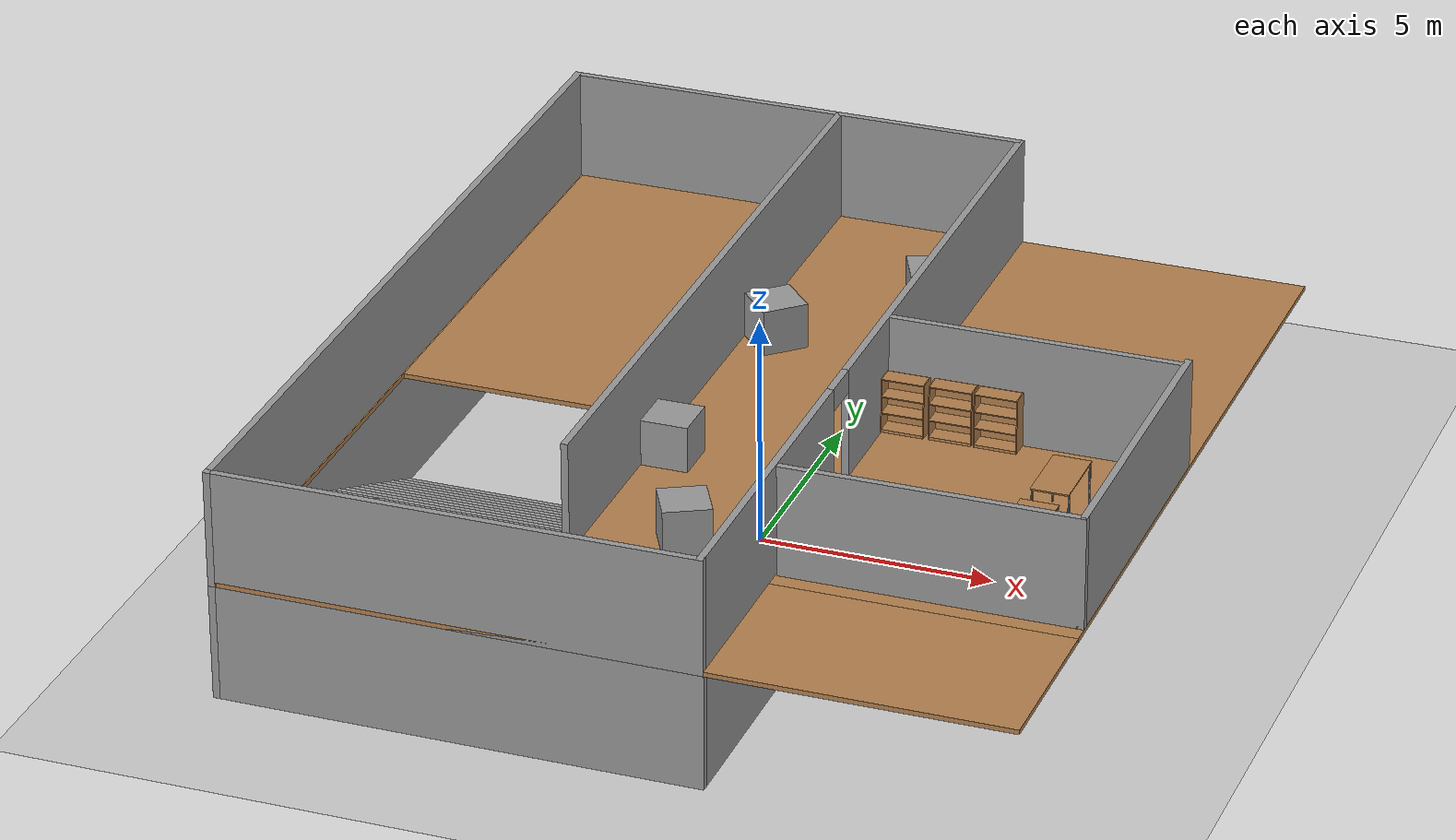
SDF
<sdf version="1.6">
 <world name="default">
  <light name="sun" type="directional">
   <pose>0 0 10 0 -0 0</pose>
   <diffuse>0.8 0.8 0.8 1</diffuse>
   <specular>0.2 0.2 0.2 1</specular>
   <attenuation>
    <range>1000</range>
    <constant>0.9</constant>
    <linear>0.01</linear>
    <quadratic>0.001</quadratic>
   </attenuation>
   <direction>-0.5 0.1 -0.9</direction>
  </light>
  <model name="ground_plane">
   <static>1</static>
   <link name="link">
    <collision name="collision">
     <geometry><plane><normal>0 0 1</normal><size>100 100</size></plane></geometry>
     <surface><friction><ode><mu>100</mu><mu2>50</mu2></ode></friction></surface>
    </collision>
    <visual name="visual">
     <cast_shadows>0</cast_shadows>
     <geometry><plane><normal>0 0 1</normal><size>100 100</size></plane></geometry>
     <material>
      <script><uri>file://media/materials/scripts/gazebo.material</uri><name>Gazebo/Grey</name></script>
     </material>
    </visual>
   </link>
  </model>
  <gravity>0 0 -9.8</gravity>
  <magnetic_field>6e-06 2.3e-05 -4.2e-05</magnetic_field>
  <atmosphere type="adiabatic"/>
  <physics name="default_physics" default="0" type="ode">
   <max_step_size>0.001</max_step_size>
   <real_time_factor>1</real_time_factor>
   <real_time_update_rate>1000</real_time_update_rate>
  </physics>
  <scene><ambient>0.4 0.4 0.4 1</ambient><background>0.7 0.7 0.7 1</background><shadows>1</shadows></scene>
  <spherical_coordinates>
   <surface_model>EARTH_WGS84</surface_model>
   <latitude_deg>0</latitude_deg>
   <longitude_deg>0</longitude_deg>
   <elevation>0</elevation>
   <heading_deg>0</heading_deg>
  </spherical_coordinates>
  <model name="chemplant1_0">
   <pose>0.37495 0.174081 0 0 -0 0</pose>
   <link name="Floor_1">
    <pose>0 0 2.5 0 -0 0</pose>
    <visual name="Floor_1_Visual_0">
     <pose>-8.17338 0 0.05 0 -0 0</pose>
     <geometry><box><size>0.175122 19.5 0.1</size></box></geometry>
     <material>
      <script><uri>file://media/materials/scripts/gazebo.material</uri><name>Gazebo/Wood</name></script>
      <ambient>1 1 1 1</ambient>
     </material>
     <meta><layer>1</layer></meta>
    </visual>
    <collision name="Floor_1_Collision_0">
     <geometry><box><size>0.175122 19.5 0.1</size></box></geometry>
     <pose>-8.17338 0 0.05 0 -0 0</pose>
    </collision>
    <visual name="Floor_1_Visual_1">
     <pose>0.087561 -7.93989 0.05 0 -0 0</pose>
     <geometry><box><size>16.3468 3.62022 0.1</size></box></geometry>
     <material>
      <script><uri>file://media/materials/scripts/gazebo.material</uri><name>Gazebo/Wood</name></script>
      <ambient>1 1 1 1</ambient>
     </material>
     <meta><layer>1</layer></meta>
    </visual>
    <collision name="Floor_1_Collision_1">
     <geometry><box><size>16.3468 3.62022 0.1</size></box></geometry>
     <pose>0.087561 -7.93989 0.05 0 -0 0</pose>
    </collision>
    <visual name="Floor_1_Visual_2">
     <pose>3.02127 1.81011 0.05 0 -0 0</pose>
     <geometry><box><size>10.4794 15.8798 0.1</size></box></geometry>
     <material>
      <script><uri>file://media/materials/scripts/gazebo.material</uri><name>Gazebo/Wood</name></script>
      <ambient>1 1 1 1</ambient>
     </material>
     <meta><layer>1</layer></meta>
    </visual>
    <collision name="Floor_1_Collision_2">
     <geometry><box><size>10.4794 15.8798 0.1</size></box></geometry>
     <pose>3.02127 1.81011 0.05 0 -0 0</pose>
    </collision>
    <visual name="Floor_1_Visual_3">
     <pose>-5.15212 4.66289 0.05 0 -0 0</pose>
     <geometry><box><size>5.86741 10.1742 0.1</size></box></geometry>
     <material>
      <script><uri>file://media/materials/scripts/gazebo.material</uri><name>Gazebo/Wood</name></script>
      <ambient>1 1 1 1</ambient>
     </material>
     <meta><layer>1</layer></meta>
    </visual>
    <collision name="Floor_1_Collision_3">
     <geometry><box><size>5.86741 10.1742 0.1</size></box></geometry>
     <pose>-5.15212 4.66289 0.05 0 -0 0</pose>
    </collision>
   </link>
   <link name="Stairs_3">
    <visual name="Stairs_3_Visual_0">
     <pose>-5.15212 -0.614412 0.083333 0 -0 0</pose>
     <geometry><box><size>5.86741 0.38037 0.166667</size></box></geometry>
     <material>
      <script><uri>file://media/materials/scripts/gazebo.material</uri><name>Gazebo/Grey</name></script>
      <ambient>1 1 1 1</ambient>
     </material>
     <meta><layer>0</layer></meta>
    </visual>
    <collision name="Stairs_3_Collision_0">
     <geometry><box><size>5.86741 0.38037 0.166667</size></box></geometry>
     <pose>-5.15212 -0.614412 0.083333 0 -0 0</pose>
    </collision>
    <visual name="Stairs_3_Visual_1">
     <pose>-5.15212 -0.994782 0.25 0 -0 0</pose>
     <geometry><box><size>5.86741 0.38037 0.166667</size></box></geometry>
     <material>
      <script><uri>file://media/materials/scripts/gazebo.material</uri><name>Gazebo/Grey</name></script>
      <ambient>1 1 1 1</ambient>
     </material>
     <meta><layer>0</layer></meta>
    </visual>
    <collision name="Stairs_3_Collision_1">
     <geometry><box><size>5.86741 0.38037 0.166667</size></box></geometry>
     <pose>-5.15212 -0.994782 0.25 0 -0 0</pose>
    </collision>
    <visual name="Stairs_3_Visual_2">
     <pose>-5.15212 -1.37515 0.416667 0 -0 0</pose>
     <geometry><box><size>5.86741 0.38037 0.166667</size></box></geometry>
     <material>
      <script><uri>file://media/materials/scripts/gazebo.material</uri><name>Gazebo/Grey</name></script>
      <ambient>1 1 1 1</ambient>
     </material>
     <meta><layer>0</layer></meta>
    </visual>
    <collision name="Stairs_3_Collision_2">
     <geometry><box><size>5.86741 0.38037 0.166667</size></box></geometry>
     <pose>-5.15212 -1.37515 0.416667 0 -0 0</pose>
    </collision>
    <visual name="Stairs_3_Visual_3">
     <pose>-5.15212 -1.75552 0.583333 0 -0 0</pose>
     <geometry><box><size>5.86741 0.38037 0.166667</size></box></geometry>
     <material>
      <script><uri>file://media/materials/scripts/gazebo.material</uri><name>Gazebo/Grey</name></script>
      <ambient>1 1 1 1</ambient>
     </material>
     <meta><layer>0</layer></meta>
    </visual>
    <collision name="Stairs_3_Collision_3">
     <geometry><box><size>5.86741 0.38037 0.166667</size></box></geometry>
     <pose>-5.15212 -1.75552 0.583333 0 -0 0</pose>
    </collision>
    <visual name="Stairs_3_Visual_4">
     <pose>-5.15212 -2.13589 0.75 0 -0 0</pose>
     <geometry><box><size>5.86741 0.38037 0.166667</size></box></geometry>
     <material>
      <script><uri>file://media/materials/scripts/gazebo.material</uri><name>Gazebo/Grey</name></script>
      <ambient>1 1 1 1</ambient>
     </material>
     <meta><layer>0</layer></meta>
    </visual>
    <collision name="Stairs_3_Collision_4">
     <geometry><box><size>5.86741 0.38037 0.166667</size></box></geometry>
     <pose>-5.15212 -2.13589 0.75 0 -0 0</pose>
    </collision>
    <visual name="Stairs_3_Visual_5">
     <pose>-5.15212 -2.51626 0.916667 0 -0 0</pose>
     <geometry><box><size>5.86741 0.38037 0.166667</size></box></geometry>
     <material>
      <script><uri>file://media/materials/scripts/gazebo.material</uri><name>Gazebo/Grey</name></script>
      <ambient>1 1 1 1</ambient>
     </material>
     <meta><layer>0</layer></meta>
    </visual>
    <collision name="Stairs_3_Collision_5">
     <geometry><box><size>5.86741 0.38037 0.166667</size></box></geometry>
     <pose>-5.15212 -2.51626 0.916667 0 -0 0</pose>
    </collision>
    <visual name="Stairs_3_Visual_6">
     <pose>-5.15212 -2.89663 1.08333 0 -0 0</pose>
     <geometry><box><size>5.86741 0.38037 0.166667</size></box></geometry>
     <material>
      <script><uri>file://media/materials/scripts/gazebo.material</uri><name>Gazebo/Grey</name></script>
      <ambient>1 1 1 1</ambient>
     </material>
     <meta><layer>0</layer></meta>
    </visual>
    <collision name="Stairs_3_Collision_6">
     <geometry><box><size>5.86741 0.38037 0.166667</size></box></geometry>
     <pose>-5.15212 -2.89663 1.08333 0 -0 0</pose>
    </collision>
    <visual name="Stairs_3_Visual_7">
     <pose>-5.15212 -3.277 1.25 0 -0 0</pose>
     <geometry><box><size>5.86741 0.38037 0.166667</size></box></geometry>
     <material>
      <script><uri>file://media/materials/scripts/gazebo.material</uri><name>Gazebo/Grey</name></script>
      <ambient>1 1 1 1</ambient>
     </material>
     <meta><layer>0</layer></meta>
    </visual>
    <collision name="Stairs_3_Collision_7">
     <geometry><box><size>5.86741 0.38037 0.166667</size></box></geometry>
     <pose>-5.15212 -3.277 1.25 0 -0 0</pose>
    </collision>
    <visual name="Stairs_3_Visual_8">
     <pose>-5.15212 -3.65737 1.41667 0 -0 0</pose>
     <geometry><box><size>5.86741 0.38037 0.166667</size></box></geometry>
     <material>
      <script><uri>file://media/materials/scripts/gazebo.material</uri><name>Gazebo/Grey</name></script>
      <ambient>1 1 1 1</ambient>
     </material>
     <meta><layer>0</layer></meta>
    </visual>
    <collision name="Stairs_3_Collision_8">
     <geometry><box><size>5.86741 0.38037 0.166667</size></box></geometry>
     <pose>-5.15212 -3.65737 1.41667 0 -0 0</pose>
    </collision>
    <visual name="Stairs_3_Visual_9">
     <pose>-5.15212 -4.03774 1.58333 0 -0 0</pose>
     <geometry><box><size>5.86741 0.38037 0.166667</size></box></geometry>
     <material>
      <script><uri>file://media/materials/scripts/gazebo.material</uri><name>Gazebo/Grey</name></script>
      <ambient>1 1 1 1</ambient>
     </material>
     <meta><layer>0</layer></meta>
    </visual>
    <collision name="Stairs_3_Collision_9">
     <geometry><box><size>5.86741 0.38037 0.166667</size></box></geometry>
     <pose>-5.15212 -4.03774 1.58333 0 -0 0</pose>
    </collision>
    <visual name="Stairs_3_Visual_10">
     <pose>-5.15212 -4.41811 1.75 0 -0 0</pose>
     <geometry><box><size>5.86741 0.38037 0.166667</size></box></geometry>
     <material>
      <script><uri>file://media/materials/scripts/gazebo.material</uri><name>Gazebo/Grey</name></script>
      <ambient>1 1 1 1</ambient>
     </material>
     <meta><layer>0</layer></meta>
    </visual>
    <collision name="Stairs_3_Collision_10">
     <geometry><box><size>5.86741 0.38037 0.166667</size></box></geometry>
     <pose>-5.15212 -4.41811 1.75 0 -0 0</pose>
    </collision>
    <visual name="Stairs_3_Visual_11">
     <pose>-5.15212 -4.79848 1.91667 0 -0 0</pose>
     <geometry><box><size>5.86741 0.38037 0.166667</size></box></geometry>
     <material>
      <script><uri>file://media/materials/scripts/gazebo.material</uri><name>Gazebo/Grey</name></script>
      <ambient>1 1 1 1</ambient>
     </material>
     <meta><layer>0</layer></meta>
    </visual>
    <collision name="Stairs_3_Collision_11">
     <geometry><box><size>5.86741 0.38037 0.166667</size></box></geometry>
     <pose>-5.15212 -4.79848 1.91667 0 -0 0</pose>
    </collision>
    <visual name="Stairs_3_Visual_12">
     <pose>-5.15212 -5.17885 2.08333 0 -0 0</pose>
     <geometry><box><size>5.86741 0.38037 0.166667</size></box></geometry>
     <material>
      <script><uri>file://media/materials/scripts/gazebo.material</uri><name>Gazebo/Grey</name></script>
      <ambient>1 1 1 1</ambient>
     </material>
     <meta><layer>0</layer></meta>
    </visual>
    <collision name="Stairs_3_Collision_12">
     <geometry><box><size>5.86741 0.38037 0.166667</size></box></geometry>
     <pose>-5.15212 -5.17885 2.08333 0 -0 0</pose>
    </collision>
    <visual name="Stairs_3_Visual_13">
     <pose>-5.15212 -5.55922 2.25 0 -0 0</pose>
     <geometry><box><size>5.86741 0.38037 0.166667</size></box></geometry>
     <material>
      <script><uri>file://media/materials/scripts/gazebo.material</uri><name>Gazebo/Grey</name></script>
      <ambient>1 1 1 1</ambient>
     </material>
     <meta><layer>0</layer></meta>
    </visual>
    <collision name="Stairs_3_Collision_13">
     <geometry><box><size>5.86741 0.38037 0.166667</size></box></geometry>
     <pose>-5.15212 -5.55922 2.25 0 -0 0</pose>
    </collision>
    <visual name="Stairs_3_Visual_14">
     <pose>-5.15212 -5.93959 2.41667 0 -0 0</pose>
     <geometry><box><size>5.86741 0.38037 0.166667</size></box></geometry>
     <material>
      <script><uri>file://media/materials/scripts/gazebo.material</uri><name>Gazebo/Grey</name></script>
      <ambient>1 1 1 1</ambient>
     </material>
     <meta><layer>0</layer></meta>
    </visual>
    <collision name="Stairs_3_Collision_14">
     <geometry><box><size>5.86741 0.38037 0.166667</size></box></geometry>
     <pose>-5.15212 -5.93959 2.41667 0 -0 0</pose>
    </collision>
   </link>
   <link name="Wall_24">
    <collision name="Wall_24_Collision">
     <geometry><box><size>19.5 0.15 2.5</size></box></geometry>
     <pose>0 0 1.25 0 -0 0</pose>
    </collision>
    <visual name="Wall_24_Visual">
     <pose>0 0 1.25 0 -0 0</pose>
     <geometry><box><size>19.5 0.15 2.5</size></box></geometry>
     <material>
      <script><uri>file://media/materials/scripts/gazebo.material</uri><name>Gazebo/Grey</name></script>
      <ambient>1 1 1 1</ambient>
     </material>
     <meta><layer>0</layer></meta>
    </visual>
    <pose>-8.18594 0 0 0 -0 1.5708</pose>
   </link>
   <link name="Wall_25">
    <collision name="Wall_25_Collision">
     <geometry><box><size>10.25 0.15 2.5</size></box></geometry>
     <pose>0 0 1.25 0 -0 0</pose>
    </collision>
    <visual name="Wall_25_Visual">
     <pose>0 0 1.25 0 -0 0</pose>
     <geometry><box><size>10.25 0.15 2.5</size></box></geometry>
     <material>
      <script><uri>file://media/materials/scripts/gazebo.material</uri><name>Gazebo/Grey</name></script>
      <ambient>1 1 1 1</ambient>
     </material>
     <meta><layer>0</layer></meta>
    </visual>
    <pose>-3.13594 9.675 0 0 -0 0</pose>
   </link>
   <link name="Wall_26">
    <collision name="Wall_26_Collision">
     <geometry><box><size>19.5 0.15 2.5</size></box></geometry>
     <pose>0 0 1.25 0 -0 0</pose>
    </collision>
    <visual name="Wall_26_Visual">
     <pose>0 0 1.25 0 -0 0</pose>
     <geometry><box><size>19.5 0.15 2.5</size></box></geometry>
     <material>
      <script><uri>file://media/materials/scripts/gazebo.material</uri><name>Gazebo/Grey</name></script>
      <ambient>1 1 1 1</ambient>
     </material>
     <meta><layer>0</layer></meta>
    </visual>
    <pose>1.91406 0 0 0 0 -1.5708</pose>
   </link>
   <link name="Wall_27">
    <collision name="Wall_27_Collision">
     <geometry><box><size>10.25 0.15 2.5</size></box></geometry>
     <pose>0 0 1.25 0 -0 0</pose>
    </collision>
    <visual name="Wall_27_Visual">
     <pose>0 0 1.25 0 -0 0</pose>
     <geometry><box><size>10.25 0.15 2.5</size></box></geometry>
     <material>
      <script><uri>file://media/materials/scripts/gazebo.material</uri><name>Gazebo/Grey</name></script>
      <ambient>1 1 1 1</ambient>
     </material>
     <meta><layer>0</layer></meta>
    </visual>
    <pose>-3.13594 -9.675 0 0 -0 3.14159</pose>
   </link>
   <link name="Wall_29">
    <collision name="Wall_29_Collision">
     <geometry><box><size>19.5 0.15 2.5</size></box></geometry>
     <pose>0 0 1.25 0 -0 0</pose>
    </collision>
    <visual name="Wall_29_Visual">
     <pose>0 0 1.25 0 -0 0</pose>
     <geometry><box><size>19.5 0.15 2.5</size></box></geometry>
     <material>
      <script><uri>file://media/materials/scripts/gazebo.material</uri><name>Gazebo/Grey</name></script>
      <ambient>1 1 1 1</ambient>
     </material>
     <meta><layer>1</layer></meta>
    </visual>
    <pose>-8.18594 0 2.5 0 -0 1.5708</pose>
   </link>
   <link name="Wall_30">
    <collision name="Wall_30_Collision">
     <geometry><box><size>10.25 0.15 2.5</size></box></geometry>
     <pose>0 0 1.25 0 -0 0</pose>
    </collision>
    <visual name="Wall_30_Visual">
     <pose>0 0 1.25 0 -0 0</pose>
     <geometry><box><size>10.25 0.15 2.5</size></box></geometry>
     <material>
      <script><uri>file://media/materials/scripts/gazebo.material</uri><name>Gazebo/Grey</name></script>
      <ambient>1 1 1 1</ambient>
     </material>
     <meta><layer>1</layer></meta>
    </visual>
    <pose>-3.13594 9.675 2.5 0 -0 0</pose>
   </link>
   <link name="Wall_31">
    <pose>1.91406 0 2.5 0 0 -1.5708</pose>
    <visual name="Wall_31_Visual_0">
     <pose>-4.12273 0 1.25 0 -0 0</pose>
     <geometry><box><size>11.2545 0.15 2.5</size></box></geometry>
     <material>
      <script><uri>file://media/materials/scripts/gazebo.material</uri><name>Gazebo/Grey</name></script>
      <ambient>1 1 1 1</ambient>
     </material>
     <meta><layer>1</layer></meta>
    </visual>
    <collision name="Wall_31_Collision_0">
     <geometry><box><size>11.2545 0.15 2.5</size></box></geometry>
     <pose>-4.12273 0 1.25 0 -0 0</pose>
    </collision>
    <visual name="Wall_31_Visual_1">
     <pose>6.07727 0 1.25 0 -0 0</pose>
     <geometry><box><size>7.34545 0.15 2.5</size></box></geometry>
     <material>
      <script><uri>file://media/materials/scripts/gazebo.material</uri><name>Gazebo/Grey</name></script>
      <ambient>1 1 1 1</ambient>
     </material>
     <meta><layer>1</layer></meta>
    </visual>
    <collision name="Wall_31_Collision_1">
     <geometry><box><size>7.34545 0.15 2.5</size></box></geometry>
     <pose>6.07727 0 1.25 0 -0 0</pose>
    </collision>
    <visual name="Wall_31_Visual_2">
     <pose>1.95455 0 2.25 0 -0 0</pose>
     <geometry><box><size>0.9 0.15 0.5</size></box></geometry>
     <material>
      <script><uri>file://media/materials/scripts/gazebo.material</uri><name>Gazebo/Grey</name></script>
      <ambient>1 1 1 1</ambient>
     </material>
     <meta><layer>1</layer></meta>
    </visual>
    <collision name="Wall_31_Collision_2">
     <geometry><box><size>0.9 0.15 0.5</size></box></geometry>
     <pose>1.95455 0 2.25 0 -0 0</pose>
    </collision>
   </link>
   <link name="Wall_32">
    <collision name="Wall_32_Collision">
     <geometry><box><size>10.25 0.15 2.5</size></box></geometry>
     <pose>0 0 1.25 0 -0 0</pose>
    </collision>
    <visual name="Wall_32_Visual">
     <pose>0 0 1.25 0 -0 0</pose>
     <geometry><box><size>10.25 0.15 2.5</size></box></geometry>
     <material>
      <script><uri>file://media/materials/scripts/gazebo.material</uri><name>Gazebo/Grey</name></script>
      <ambient>1 1 1 1</ambient>
     </material>
     <meta><layer>1</layer></meta>
    </visual>
    <pose>-3.13594 -9.675 2.5 0 -0 3.14159</pose>
   </link>
   <link name="Wall_33">
    <collision name="Wall_33_Collision">
     <geometry><box><size>7 0.15 2.5</size></box></geometry>
     <pose>0 0 1.25 0 -0 0</pose>
    </collision>
    <visual name="Wall_33_Visual">
     <pose>0 0 1.25 0 -0 0</pose>
     <geometry><box><size>7 0.15 2.5</size></box></geometry>
     <material>
      <script><uri>file://media/materials/scripts/gazebo.material</uri><name>Gazebo/Grey</name></script>
      <ambient>1 1 1 1</ambient>
     </material>
     <meta><layer>1</layer></meta>
    </visual>
    <pose>8.18595 -2.27953 2.5 0 0 -1.5708</pose>
   </link>
   <link name="Wall_34">
    <collision name="Wall_34_Collision">
     <geometry><box><size>6.25 0.15 2.5</size></box></geometry>
     <pose>0 0 1.25 0 -0 0</pose>
    </collision>
    <visual name="Wall_34_Visual">
     <pose>0 0 1.25 0 -0 0</pose>
     <geometry><box><size>6.25 0.15 2.5</size></box></geometry>
     <material>
      <script><uri>file://media/materials/scripts/gazebo.material</uri><name>Gazebo/Grey</name></script>
      <ambient>1 1 1 1</ambient>
     </material>
     <meta><layer>1</layer></meta>
    </visual>
    <pose>5.13594 -5.70453 2.5 0 -0 3.14159</pose>
   </link>
   <link name="Wall_36">
    <collision name="Wall_36_Collision">
     <geometry><box><size>6.25 0.15 2.5</size></box></geometry>
     <pose>0 0 1.25 0 -0 0</pose>
    </collision>
    <visual name="Wall_36_Visual">
     <pose>0 0 1.25 0 -0 0</pose>
     <geometry><box><size>6.25 0.15 2.5</size></box></geometry>
     <material>
      <script><uri>file://media/materials/scripts/gazebo.material</uri><name>Gazebo/Grey</name></script>
      <ambient>1 1 1 1</ambient>
     </material>
     <meta><layer>1</layer></meta>
    </visual>
    <pose>5.03962 1.00047 2.5 0 -0 0</pose>
   </link>
   <link name="Wall_38">
    <collision name="Wall_38_Collision">
     <geometry><box><size>16 0.15 2.5</size></box></geometry>
     <pose>0 0 1.25 0 -0 0</pose>
    </collision>
    <visual name="Wall_38_Visual">
     <pose>0 0 1.25 0 -0 0</pose>
     <geometry><box><size>16 0.15 2.5</size></box></geometry>
     <material>
      <script><uri>file://media/materials/scripts/gazebo.material</uri><name>Gazebo/Grey</name></script>
      <ambient>1 1 1 1</ambient>
     </material>
     <meta><layer>1</layer></meta>
    </visual>
    <pose>-2.16109 1.68082 2.5 0 0 -1.5708</pose>
   </link>
   <static>1</static>
  </model>
  <model name="table">
   <static>1</static>
   <link name="link">
    <collision name="surface">
     <pose>0 0 1 0 -0 0</pose>
     <geometry><box><size>1.5 0.8 0.03</size></box></geometry>
     <surface><friction><ode><mu>0.6</mu><mu2>0.6</mu2></ode></friction></surface>
    </collision>
    <visual name="visual1">
     <pose>0 0 1 0 -0 0</pose>
     <geometry><box><size>1.5 0.8 0.03</size></box></geometry>
     <material>
      <script><uri>file://media/materials/scripts/gazebo.material</uri><name>Gazebo/Wood</name></script>
     </material>
    </visual>
    <collision name="front_left_leg">
     <pose>0.68 0.38 0.5 0 -0 0</pose>
     <geometry><cylinder><radius>0.02</radius><length>1</length></cylinder></geometry>
    </collision>
    <visual name="front_left_leg">
     <pose>0.68 0.38 0.5 0 -0 0</pose>
     <geometry><cylinder><radius>0.02</radius><length>1</length></cylinder></geometry>
     <material>
      <script><uri>file://media/materials/scripts/gazebo.material</uri><name>Gazebo/Grey</name></script>
     </material>
    </visual>
    <collision name="front_right_leg">
     <pose>0.68 -0.38 0.5 0 -0 0</pose>
     <geometry><cylinder><radius>0.02</radius><length>1</length></cylinder></geometry>
    </collision>
    <visual name="front_right_leg">
     <pose>0.68 -0.38 0.5 0 -0 0</pose>
     <geometry><cylinder><radius>0.02</radius><length>1</length></cylinder></geometry>
     <material>
      <script><uri>file://media/materials/scripts/gazebo.material</uri><name>Gazebo/Grey</name></script>
     </material>
    </visual>
    <collision name="back_right_leg">
     <pose>-0.68 -0.38 0.5 0 -0 0</pose>
     <geometry><cylinder><radius>0.02</radius><length>1</length></cylinder></geometry>
    </collision>
    <visual name="back_right_leg">
     <pose>-0.68 -0.38 0.5 0 -0 0</pose>
     <geometry><cylinder><radius>0.02</radius><length>1</length></cylinder></geometry>
     <material>
      <script><uri>file://media/materials/scripts/gazebo.material</uri><name>Gazebo/Grey</name></script>
     </material>
    </visual>
    <collision name="back_left_leg">
     <pose>-0.68 0.38 0.5 0 -0 0</pose>
     <geometry><cylinder><radius>0.02</radius><length>1</length></cylinder></geometry>
    </collision>
    <visual name="back_left_leg">
     <pose>-0.68 0.38 0.5 0 -0 0</pose>
     <geometry><cylinder><radius>0.02</radius><length>1</length></cylinder></geometry>
     <material>
      <script><uri>file://media/materials/scripts/gazebo.material</uri><name>Gazebo/Grey</name></script>
     </material>
    </visual>
   </link>
   <pose>6.91555 -1.71539 2.66305 0 -0 1.56849</pose>
  </model>
  <model name="table_clone">
   <static>1</static>
   <link name="link">
    <collision name="surface">
     <pose>0 0 1 0 -0 0</pose>
     <geometry><box><size>1.5 0.8 0.03</size></box></geometry>
     <surface><friction><ode><mu>0.6</mu><mu2>0.6</mu2></ode></friction></surface>
    </collision>
    <visual name="visual1">
     <pose>0 0 1 0 -0 0</pose>
     <geometry><box><size>1.5 0.8 0.03</size></box></geometry>
     <material>
      <script><uri>file://media/materials/scripts/gazebo.material</uri><name>Gazebo/Wood</name></script>
     </material>
    </visual>
    <collision name="front_left_leg">
     <pose>0.68 0.38 0.5 0 -0 0</pose>
     <geometry><cylinder><radius>0.02</radius><length>1</length></cylinder></geometry>
    </collision>
    <visual name="front_left_leg">
     <pose>0.68 0.38 0.5 0 -0 0</pose>
     <geometry><cylinder><radius>0.02</radius><length>1</length></cylinder></geometry>
     <material>
      <script><uri>file://media/materials/scripts/gazebo.material</uri><name>Gazebo/Grey</name></script>
     </material>
    </visual>
    <collision name="front_right_leg">
     <pose>0.68 -0.38 0.5 0 -0 0</pose>
     <geometry><cylinder><radius>0.02</radius><length>1</length></cylinder></geometry>
    </collision>
    <visual name="front_right_leg">
     <pose>0.68 -0.38 0.5 0 -0 0</pose>
     <geometry><cylinder><radius>0.02</radius><length>1</length></cylinder></geometry>
     <material>
      <script><uri>file://media/materials/scripts/gazebo.material</uri><name>Gazebo/Grey</name></script>
     </material>
    </visual>
    <collision name="back_right_leg">
     <pose>-0.68 -0.38 0.5 0 -0 0</pose>
     <geometry><cylinder><radius>0.02</radius><length>1</length></cylinder></geometry>
    </collision>
    <visual name="back_right_leg">
     <pose>-0.68 -0.38 0.5 0 -0 0</pose>
     <geometry><cylinder><radius>0.02</radius><length>1</length></cylinder></geometry>
     <material>
      <script><uri>file://media/materials/scripts/gazebo.material</uri><name>Gazebo/Grey</name></script>
     </material>
    </visual>
    <collision name="back_left_leg">
     <pose>-0.68 0.38 0.5 0 -0 0</pose>
     <geometry><cylinder><radius>0.02</radius><length>1</length></cylinder></geometry>
    </collision>
    <visual name="back_left_leg">
     <pose>-0.68 0.38 0.5 0 -0 0</pose>
     <geometry><cylinder><radius>0.02</radius><length>1</length></cylinder></geometry>
     <material>
      <script><uri>file://media/materials/scripts/gazebo.material</uri><name>Gazebo/Grey</name></script>
     </material>
    </visual>
   </link>
   <pose>6.86253 -3.66028 2.66305 0 -0 1.56849</pose>
  </model>
  <model name="bookshelf">
   <static>1</static>
   <link name="link">
    <inertial><mass>1</mass></inertial>
    <collision name="back">
     <pose>0 0.005 0.6 0 -0 0</pose>
     <geometry><box><size>0.9 0.01 1.2</size></box></geometry>
    </collision>
    <visual name="visual1">
     <pose>0 0.005 0.6 0 -0 0</pose>
     <geometry><box><size>0.9 0.01 1.2</size></box></geometry>
     <material>
      <script><uri>file://media/materials/scripts/gazebo.material</uri><name>Gazebo/Wood</name></script>
     </material>
    </visual>
    <collision name="left_side">
     <pose>0.45 -0.195 0.6 0 -0 0</pose>
     <geometry><box><size>0.02 0.4 1.2</size></box></geometry>
    </collision>
    <visual name="visual2">
     <pose>0.45 -0.195 0.6 0 -0 0</pose>
     <geometry><box><size>0.02 0.4 1.2</size></box></geometry>
     <material>
      <script><uri>file://media/materials/scripts/gazebo.material</uri><name>Gazebo/Wood</name></script>
     </material>
    </visual>
    <collision name="right_side">
     <pose>-0.45 -0.195 0.6 0 -0 0</pose>
     <geometry><box><size>0.02 0.4 1.2</size></box></geometry>
    </collision>
    <visual name="visual3">
     <pose>-0.45 -0.195 0.6 0 -0 0</pose>
     <geometry><box><size>0.02 0.4 1.2</size></box></geometry>
     <material>
      <script><uri>file://media/materials/scripts/gazebo.material</uri><name>Gazebo/Wood</name></script>
     </material>
    </visual>
    <collision name="bottom">
     <pose>0 -0.195 0.03 0 -0 0</pose>
     <geometry><box><size>0.88 0.4 0.06</size></box></geometry>
    </collision>
    <visual name="visual4">
     <pose>0 -0.195 0.03 0 -0 0</pose>
     <geometry><box><size>0.88 0.4 0.06</size></box></geometry>
     <material>
      <script><uri>file://media/materials/scripts/gazebo.material</uri><name>Gazebo/Wood</name></script>
     </material>
    </visual>
    <collision name="top">
     <pose>0 -0.195 1.19 0 -0 0</pose>
     <geometry><box><size>0.88 0.4 0.02</size></box></geometry>
    </collision>
    <visual name="visual5">
     <pose>0 -0.195 1.19 0 -0 0</pose>
     <geometry><box><size>0.88 0.4 0.02</size></box></geometry>
     <material>
      <script><uri>file://media/materials/scripts/gazebo.material</uri><name>Gazebo/Wood</name></script>
     </material>
    </visual>
    <collision name="low_shelf">
     <pose>0 -0.195 0.43 0 -0 0</pose>
     <geometry><box><size>0.88 0.4 0.02</size></box></geometry>
    </collision>
    <visual name="visual6">
     <pose>0 -0.195 0.43 0 -0 0</pose>
     <geometry><box><size>0.88 0.4 0.02</size></box></geometry>
     <material>
      <script><uri>file://media/materials/scripts/gazebo.material</uri><name>Gazebo/Wood</name></script>
     </material>
    </visual>
    <collision name="high_shelf">
     <pose>0 -0.195 0.8 0 -0 0</pose>
     <geometry><box><size>0.88 0.4 0.02</size></box></geometry>
    </collision>
    <visual name="visual7">
     <pose>0 -0.195 0.8 0 -0 0</pose>
     <geometry><box><size>0.88 0.4 0.02</size></box></geometry>
     <material>
      <script><uri>file://media/materials/scripts/gazebo.material</uri><name>Gazebo/Wood</name></script>
     </material>
    </visual>
   </link>
   <pose>2.82827 0.99529 2.64873 0 -0 0</pose>
  </model>
  <model name="bookshelf_clone">
   <static>1</static>
   <link name="link">
    <inertial><mass>1</mass></inertial>
    <collision name="back">
     <pose>0 0.005 0.6 0 -0 0</pose>
     <geometry><box><size>0.9 0.01 1.2</size></box></geometry>
    </collision>
    <visual name="visual1">
     <pose>0 0.005 0.6 0 -0 0</pose>
     <geometry><box><size>0.9 0.01 1.2</size></box></geometry>
     <material>
      <script><uri>file://media/materials/scripts/gazebo.material</uri><name>Gazebo/Wood</name></script>
     </material>
    </visual>
    <collision name="left_side">
     <pose>0.45 -0.195 0.6 0 -0 0</pose>
     <geometry><box><size>0.02 0.4 1.2</size></box></geometry>
    </collision>
    <visual name="visual2">
     <pose>0.45 -0.195 0.6 0 -0 0</pose>
     <geometry><box><size>0.02 0.4 1.2</size></box></geometry>
     <material>
      <script><uri>file://media/materials/scripts/gazebo.material</uri><name>Gazebo/Wood</name></script>
     </material>
    </visual>
    <collision name="right_side">
     <pose>-0.45 -0.195 0.6 0 -0 0</pose>
     <geometry><box><size>0.02 0.4 1.2</size></box></geometry>
    </collision>
    <visual name="visual3">
     <pose>-0.45 -0.195 0.6 0 -0 0</pose>
     <geometry><box><size>0.02 0.4 1.2</size></box></geometry>
     <material>
      <script><uri>file://media/materials/scripts/gazebo.material</uri><name>Gazebo/Wood</name></script>
     </material>
    </visual>
    <collision name="bottom">
     <pose>0 -0.195 0.03 0 -0 0</pose>
     <geometry><box><size>0.88 0.4 0.06</size></box></geometry>
    </collision>
    <visual name="visual4">
     <pose>0 -0.195 0.03 0 -0 0</pose>
     <geometry><box><size>0.88 0.4 0.06</size></box></geometry>
     <material>
      <script><uri>file://media/materials/scripts/gazebo.material</uri><name>Gazebo/Wood</name></script>
     </material>
    </visual>
    <collision name="top">
     <pose>0 -0.195 1.19 0 -0 0</pose>
     <geometry><box><size>0.88 0.4 0.02</size></box></geometry>
    </collision>
    <visual name="visual5">
     <pose>0 -0.195 1.19 0 -0 0</pose>
     <geometry><box><size>0.88 0.4 0.02</size></box></geometry>
     <material>
      <script><uri>file://media/materials/scripts/gazebo.material</uri><name>Gazebo/Wood</name></script>
     </material>
    </visual>
    <collision name="low_shelf">
     <pose>0 -0.195 0.43 0 -0 0</pose>
     <geometry><box><size>0.88 0.4 0.02</size></box></geometry>
    </collision>
    <visual name="visual6">
     <pose>0 -0.195 0.43 0 -0 0</pose>
     <geometry><box><size>0.88 0.4 0.02</size></box></geometry>
     <material>
      <script><uri>file://media/materials/scripts/gazebo.material</uri><name>Gazebo/Wood</name></script>
     </material>
    </visual>
    <collision name="high_shelf">
     <pose>0 -0.195 0.8 0 -0 0</pose>
     <geometry><box><size>0.88 0.4 0.02</size></box></geometry>
    </collision>
    <visual name="visual7">
     <pose>0 -0.195 0.8 0 -0 0</pose>
     <geometry><box><size>0.88 0.4 0.02</size></box></geometry>
     <material>
      <script><uri>file://media/materials/scripts/gazebo.material</uri><name>Gazebo/Wood</name></script>
     </material>
    </visual>
   </link>
   <pose>3.83733 1.0111 2.64873 0 -0 0</pose>
  </model>
  <model name="bookshelf_clone_0">
   <static>1</static>
   <link name="link">
    <inertial><mass>1</mass></inertial>
    <collision name="back">
     <pose>0 0.005 0.6 0 -0 0</pose>
     <geometry><box><size>0.9 0.01 1.2</size></box></geometry>
    </collision>
    <visual name="visual1">
     <pose>0 0.005 0.6 0 -0 0</pose>
     <geometry><box><size>0.9 0.01 1.2</size></box></geometry>
     <material>
      <script><uri>file://media/materials/scripts/gazebo.material</uri><name>Gazebo/Wood</name></script>
     </material>
    </visual>
    <collision name="left_side">
     <pose>0.45 -0.195 0.6 0 -0 0</pose>
     <geometry><box><size>0.02 0.4 1.2</size></box></geometry>
    </collision>
    <visual name="visual2">
     <pose>0.45 -0.195 0.6 0 -0 0</pose>
     <geometry><box><size>0.02 0.4 1.2</size></box></geometry>
     <material>
      <script><uri>file://media/materials/scripts/gazebo.material</uri><name>Gazebo/Wood</name></script>
     </material>
    </visual>
    <collision name="right_side">
     <pose>-0.45 -0.195 0.6 0 -0 0</pose>
     <geometry><box><size>0.02 0.4 1.2</size></box></geometry>
    </collision>
    <visual name="visual3">
     <pose>-0.45 -0.195 0.6 0 -0 0</pose>
     <geometry><box><size>0.02 0.4 1.2</size></box></geometry>
     <material>
      <script><uri>file://media/materials/scripts/gazebo.material</uri><name>Gazebo/Wood</name></script>
     </material>
    </visual>
    <collision name="bottom">
     <pose>0 -0.195 0.03 0 -0 0</pose>
     <geometry><box><size>0.88 0.4 0.06</size></box></geometry>
    </collision>
    <visual name="visual4">
     <pose>0 -0.195 0.03 0 -0 0</pose>
     <geometry><box><size>0.88 0.4 0.06</size></box></geometry>
     <material>
      <script><uri>file://media/materials/scripts/gazebo.material</uri><name>Gazebo/Wood</name></script>
     </material>
    </visual>
    <collision name="top">
     <pose>0 -0.195 1.19 0 -0 0</pose>
     <geometry><box><size>0.88 0.4 0.02</size></box></geometry>
    </collision>
    <visual name="visual5">
     <pose>0 -0.195 1.19 0 -0 0</pose>
     <geometry><box><size>0.88 0.4 0.02</size></box></geometry>
     <material>
      <script><uri>file://media/materials/scripts/gazebo.material</uri><name>Gazebo/Wood</name></script>
     </material>
    </visual>
    <collision name="low_shelf">
     <pose>0 -0.195 0.43 0 -0 0</pose>
     <geometry><box><size>0.88 0.4 0.02</size></box></geometry>
    </collision>
    <visual name="visual6">
     <pose>0 -0.195 0.43 0 -0 0</pose>
     <geometry><box><size>0.88 0.4 0.02</size></box></geometry>
     <material>
      <script><uri>file://media/materials/scripts/gazebo.material</uri><name>Gazebo/Wood</name></script>
     </material>
    </visual>
    <collision name="high_shelf">
     <pose>0 -0.195 0.8 0 -0 0</pose>
     <geometry><box><size>0.88 0.4 0.02</size></box></geometry>
    </collision>
    <visual name="visual7">
     <pose>0 -0.195 0.8 0 -0 0</pose>
     <geometry><box><size>0.88 0.4 0.02</size></box></geometry>
     <material>
      <script><uri>file://media/materials/scripts/gazebo.material</uri><name>Gazebo/Wood</name></script>
     </material>
    </visual>
   </link>
   <pose>4.79516 1.00732 2.64873 0 -0 0</pose>
  </model>
  <light name="user_point_light_0" type="point">
   <pose>-2.45585 1.43807 1 0 -0 0</pose>
   <diffuse>0.5 0.5 0.5 1</diffuse>
   <specular>0.1 0.1 0.1 1</specular>
   <attenuation>
    <range>20</range>
    <constant>0.5</constant>
    <linear>0.01</linear>
    <quadratic>0.001</quadratic>
   </attenuation>
   <cast_shadows>0</cast_shadows>
   <direction>0 0 -1</direction>
  </light>
  <model name="unit_box">
   <pose>1.55029 6.26446 3.1 0 -0 0.432953</pose>
   <link name="link">
    <inertial>
     <mass>1</mass>
     <inertia>
      <ixx>0.166667</ixx>
      <ixy>0</ixy>
      <ixz>0</ixz>
      <iyy>0.166667</iyy>
      <iyz>0</iyz>
      <izz>0.166667</izz>
     </inertia>
    </inertial>
    <collision name="collision"><geometry><box><size>1 1 1</size></box></geometry></collision>
    <visual name="visual">
     <geometry><box><size>1 1 1</size></box></geometry>
     <material>
      <script><name>Gazebo/Grey</name><uri>file://media/materials/scripts/gazebo.material</uri></script>
     </material>
    </visual>
   </link>
  </model>
  <model name="unit_box_clone">
   <pose>-1.00449 3.7308 3.1 0 -0 0.749275</pose>
   <link name="link">
    <inertial>
     <mass>1</mass>
     <inertia>
      <ixx>0.166667</ixx>
      <ixy>0</ixy>
      <ixz>0</ixz>
      <iyy>0.166667</iyy>
      <iyz>0</iyz>
      <izz>0.166667</izz>
     </inertia>
    </inertial>
    <collision name="collision"><geometry><box><size>1 1 1</size></box></geometry></collision>
    <visual name="visual">
     <geometry><box><size>1 1 1</size></box></geometry>
     <material>
      <script><name>Gazebo/Grey</name><uri>file://media/materials/scripts/gazebo.material</uri></script>
     </material>
    </visual>
   </link>
  </model>
  <model name="unit_box_clone_0">
   <pose>0.264953 -5.02292 3.1 0 -0 0.485794</pose>
   <link name="link">
    <inertial>
     <mass>1</mass>
     <inertia>
      <ixx>0.166667</ixx>
      <ixy>0</ixy>
      <ixz>0</ixz>
      <iyy>0.166667</iyy>
      <iyz>0</iyz>
      <izz>0.166667</izz>
     </inertia>
    </inertial>
    <collision name="collision"><geometry><box><size>1 1 1</size></box></geometry></collision>
    <visual name="visual">
     <geometry><box><size>1 1 1</size></box></geometry>
     <material>
      <script><name>Gazebo/Grey</name><uri>file://media/materials/scripts/gazebo.material</uri></script>
     </material>
    </visual>
   </link>
  </model>
  <model name="unit_box_clone_1">
   <pose>-5.44715 -7.6534 3.1 0 -0 0.491669</pose>
   <link name="link">
    <inertial>
     <mass>1</mass>
     <inertia>
      <ixx>0.166667</ixx>
      <ixy>0</ixy>
      <ixz>0</ixz>
      <iyy>0.166667</iyy>
      <iyz>0</iyz>
      <izz>0.166667</izz>
     </inertia>
    </inertial>
    <collision name="collision"><geometry><box><size>1 1 1</size></box></geometry></collision>
    <visual name="visual">
     <geometry><box><size>1 1 1</size></box></geometry>
     <material>
      <script><name>Gazebo/Grey</name><uri>file://media/materials/scripts/gazebo.material</uri></script>
     </material>
    </visual>
   </link>
  </model>
  <model name="unit_box_clone_0_clone">
   <pose>-1.21091 -1.77174 3.1 -2e-06 -0 -5.5e-05</pose>
   <link name="link">
    <inertial>
     <mass>1</mass>
     <inertia>
      <ixx>0.166667</ixx>
      <ixy>0</ixy>
      <ixz>0</ixz>
      <iyy>0.166667</iyy>
      <iyz>0</iyz>
      <izz>0.166667</izz>
     </inertia>
    </inertial>
    <collision name="collision"><geometry><box><size>1 1 1</size></box></geometry></collision>
    <visual name="visual">
     <geometry><box><size>1 1 1</size></box></geometry>
     <material>
      <script><name>Gazebo/Grey</name><uri>file://media/materials/scripts/gazebo.material</uri></script>
     </material>
    </visual>
   </link>
  </model>
 </world>
</sdf>
